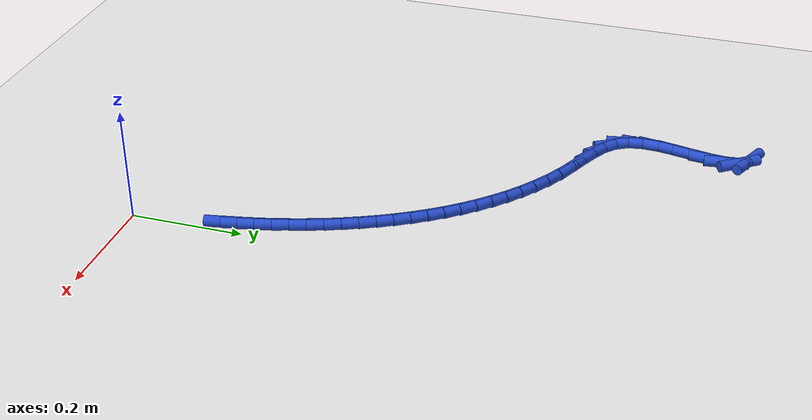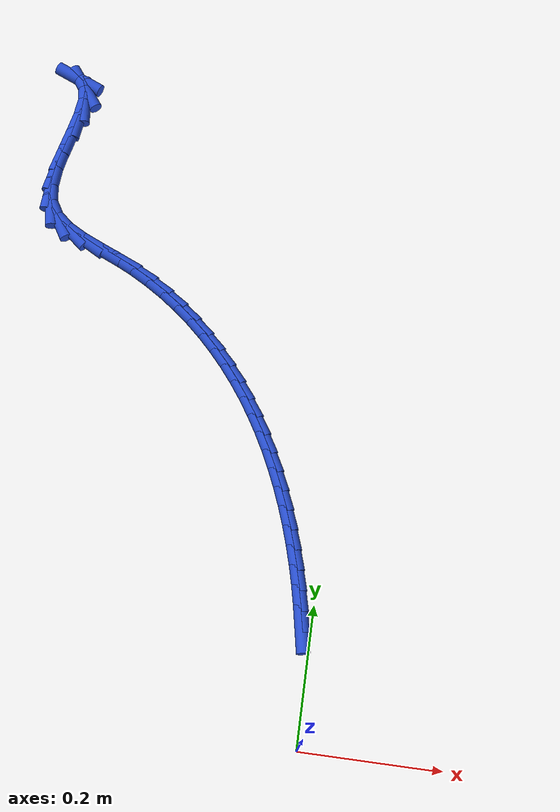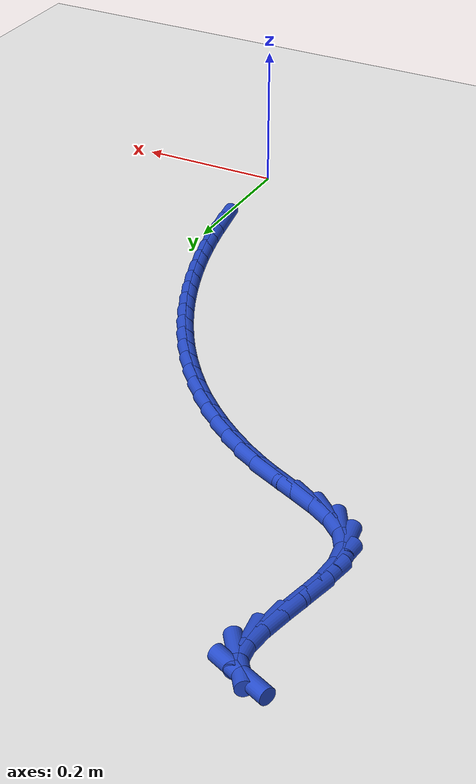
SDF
<sdf version="1.6">
 <world name="default">
  <model name="ground_plane">
   <static>1</static>
   <link name="link">
    <collision name="collision">
     <geometry><plane><normal>0 0 1</normal><size>100 100</size></plane></geometry>
     <surface><friction><ode><mu>100</mu><mu2>50</mu2></ode></friction></surface>
    </collision>
    <visual name="visual">
     <cast_shadows>0</cast_shadows>
     <geometry><plane><normal>0 0 1</normal><size>100 100</size></plane></geometry>
     <material>
      <script><uri>file://media/materials/scripts/gazebo.material</uri><name>Gazebo/WhiteGlow</name></script>
     </material>
    </visual>
   </link>
  </model>
  <model name="line">
   <link name="link_6">
    <pose>-0.014490750442573185 0.16972795951124003 0.01 0 1.57 -1.3855432155248486</pose>
    <collision name="collision">
     <geometry><cylinder><radius>0.01</radius><length>0.08</length></cylinder></geometry>
    </collision>
    <visual name="visual">
     <material>
      <script><name>Gazebo/Blue</name><uri>file://media/materials/scripts/gazebo.material</uri></script>
     </material>
     <geometry><cylinder><radius>0.01</radius><length>0.08</length></cylinder></geometry>
    </visual>
   </link>
   <link name="link_7">
    <pose>-0.01976101061200003 0.1978507382583084 0.01 0 1.57 -1.3569011477634403</pose>
    <collision name="collision">
     <geometry><cylinder><radius>0.01</radius><length>0.08</length></cylinder></geometry>
    </collision>
    <visual name="visual">
     <material>
      <script><name>Gazebo/Blue</name><uri>file://media/materials/scripts/gazebo.material</uri></script>
     </material>
     <geometry><cylinder><radius>0.01</radius><length>0.08</length></cylinder></geometry>
    </visual>
   </link>
   <link name="link_8">
    <pose>-0.02586236894716214 0.22593938087195514 0.01 0 1.57 -1.3278406887096128</pose>
    <collision name="collision">
     <geometry><cylinder><radius>0.01</radius><length>0.08</length></cylinder></geometry>
    </collision>
    <visual name="visual">
     <material>
      <script><name>Gazebo/Blue</name><uri>file://media/materials/scripts/gazebo.material</uri></script>
     </material>
     <geometry><cylinder><radius>0.01</radius><length>0.08</length></cylinder></geometry>
    </visual>
   </link>
   <link name="link_9">
    <pose>-0.03280944592740431 0.2539685581422681 0.01 0 1.57 -1.2975976570735104</pose>
    <collision name="collision">
     <geometry><cylinder><radius>0.01</radius><length>0.08</length></cylinder></geometry>
    </collision>
    <visual name="visual">
     <material>
      <script><name>Gazebo/Blue</name><uri>file://media/materials/scripts/gazebo.material</uri></script>
     </material>
     <geometry><cylinder><radius>0.01</radius><length>0.08</length></cylinder></geometry>
    </visual>
   </link>
   <link name="link_10">
    <pose>-0.04062848938661211 0.28187329596348015 0.01 0 1.57 -1.2660096918511405</pose>
    <collision name="collision">
     <geometry><cylinder><radius>0.01</radius><length>0.08</length></cylinder></geometry>
    </collision>
    <visual name="visual">
     <material>
      <script><name>Gazebo/Blue</name><uri>file://media/materials/scripts/gazebo.material</uri></script>
     </material>
     <geometry><cylinder><radius>0.01</radius><length>0.08</length></cylinder></geometry>
    </visual>
   </link>
   <link name="link_11">
    <pose>-0.049346553325772154 0.3095858715039086 0.01 0 1.57 -1.2329635797595693</pose>
    <collision name="collision">
     <geometry><cylinder><radius>0.01</radius><length>0.08</length></cylinder></geometry>
    </collision>
    <visual name="visual">
     <material>
      <script><name>Gazebo/Blue</name><uri>file://media/materials/scripts/gazebo.material</uri></script>
     </material>
     <geometry><cylinder><radius>0.01</radius><length>0.08</length></cylinder></geometry>
    </visual>
   </link>
   <link name="link_12">
    <pose>-0.058990691745871036 0.3370385619318703 0.01 0 1.57 -1.1983488932502169</pose>
    <collision name="collision">
     <geometry><cylinder><radius>0.01</radius><length>0.08</length></cylinder></geometry>
    </collision>
    <visual name="visual">
     <material>
      <script><name>Gazebo/Blue</name><uri>file://media/materials/scripts/gazebo.material</uri></script>
     </material>
     <geometry><cylinder><radius>0.01</radius><length>0.08</length></cylinder></geometry>
    </visual>
   </link>
   <link name="link_13">
    <pose>-0.06958795864789534 0.36416364441568255 0.01 0 1.57 -1.1620599497109119</pose>
    <collision name="collision">
     <geometry><cylinder><radius>0.01</radius><length>0.08</length></cylinder></geometry>
    </collision>
    <visual name="visual">
     <material>
      <script><name>Gazebo/Blue</name><uri>file://media/materials/scripts/gazebo.material</uri></script>
     </material>
     <geometry><cylinder><radius>0.01</radius><length>0.08</length></cylinder></geometry>
    </visual>
   </link>
   <link name="link_14">
    <pose>-0.08116540803283172 0.39089339612366225 0.01 0 1.57 -1.1239984541088368</pose>
    <collision name="collision">
     <geometry><cylinder><radius>0.01</radius><length>0.08</length></cylinder></geometry>
    </collision>
    <visual name="visual">
     <material>
      <script><name>Gazebo/Blue</name><uri>file://media/materials/scripts/gazebo.material</uri></script>
     </material>
     <geometry><cylinder><radius>0.01</radius><length>0.08</length></cylinder></geometry>
    </visual>
   </link>
   <link name="link_15">
    <pose>-0.09375009390166672 0.41716009422412653 0.01 0 1.57 -1.0840768847911435</pose>
    <collision name="collision">
     <geometry><cylinder><radius>0.01</radius><length>0.08</length></cylinder></geometry>
    </collision>
    <visual name="visual">
     <material>
      <script><name>Gazebo/Blue</name><uri>file://media/materials/scripts/gazebo.material</uri></script>
     </material>
     <geometry><cylinder><radius>0.01</radius><length>0.08</length></cylinder></geometry>
    </visual>
   </link>
   <link name="link_16">
    <pose>-0.10736907025538697 0.44289601588539246 0.01 0 1.57 -1.0422226506803636</pose>
    <collision name="collision">
     <geometry><cylinder><radius>0.01</radius><length>0.08</length></cylinder></geometry>
    </collision>
    <visual name="visual">
     <material>
      <script><name>Gazebo/Blue</name><uri>file://media/materials/scripts/gazebo.material</uri></script>
     </material>
     <geometry><cylinder><radius>0.01</radius><length>0.08</length></cylinder></geometry>
    </visual>
   </link>
   <link name="link_17">
    <pose>-0.12204939109497907 0.46803343827577715 0.01 0 1.57 -0.9983829927983333</pose>
    <collision name="collision">
     <geometry><cylinder><radius>0.01</radius><length>0.08</length></cylinder></geometry>
    </collision>
    <visual name="visual">
     <material>
      <script><name>Gazebo/Blue</name><uri>file://media/materials/scripts/gazebo.material</uri></script>
     </material>
     <geometry><cylinder><radius>0.01</radius><length>0.08</length></cylinder></geometry>
    </visual>
   </link>
   <link name="link_18">
    <pose>-0.13781811042142963 0.4925046385635976 0.01 0 1.57 -0.9525305192763821</pose>
    <collision name="collision">
     <geometry><cylinder><radius>0.01</radius><length>0.08</length></cylinder></geometry>
    </collision>
    <visual name="visual">
     <material>
      <script><name>Gazebo/Blue</name><uri>file://media/materials/scripts/gazebo.material</uri></script>
     </material>
     <geometry><cylinder><radius>0.01</radius><length>0.08</length></cylinder></geometry>
    </visual>
   </link>
   <link name="link_19">
    <pose>-0.15470228223572524 0.5162418939171709 0.01 0 1.57 -0.9046691493081778</pose>
    <collision name="collision">
     <geometry><cylinder><radius>0.01</radius><length>0.08</length></cylinder></geometry>
    </collision>
    <visual name="visual">
     <material>
      <script><name>Gazebo/Blue</name><uri>file://media/materials/scripts/gazebo.material</uri></script>
     </material>
     <geometry><cylinder><radius>0.01</radius><length>0.08</length></cylinder></geometry>
    </visual>
   </link>
   <link name="link_20">
    <pose>-0.17272896053885256 0.5391774815048141 0.01 0 1.57 -0.8548401026462458</pose>
    <collision name="collision">
     <geometry><cylinder><radius>0.01</radius><length>0.08</length></cylinder></geometry>
    </collision>
    <visual name="visual">
     <material>
      <script><name>Gazebo/Blue</name><uri>file://media/materials/scripts/gazebo.material</uri></script>
     </material>
     <geometry><cylinder><radius>0.01</radius><length>0.08</length></cylinder></geometry>
    </visual>
   </link>
   <link name="link_21">
    <pose>-0.19192519933179808 0.5612436784948442 0.01 0 1.57 -0.8031274215292697</pose>
    <collision name="collision">
     <geometry><cylinder><radius>0.01</radius><length>0.08</length></cylinder></geometry>
    </collision>
    <visual name="visual">
     <material>
      <script><name>Gazebo/Blue</name><uri>file://media/materials/scripts/gazebo.material</uri></script>
     </material>
     <geometry><cylinder><radius>0.01</radius><length>0.08</length></cylinder></geometry>
    </visual>
   </link>
   <link name="link_22">
    <pose>-0.21231805261554848 0.5823727620555786 0.01 0 1.57 -0.7496623774940291</pose>
    <collision name="collision">
     <geometry><cylinder><radius>0.01</radius><length>0.08</length></cylinder></geometry>
    </collision>
    <visual name="visual">
     <material>
      <script><name>Gazebo/Blue</name><uri>file://media/materials/scripts/gazebo.material</uri></script>
     </material>
     <geometry><cylinder><radius>0.01</radius><length>0.08</length></cylinder></geometry>
    </visual>
   </link>
   <link name="link_23">
    <pose>-0.23393457439109025 0.6024970093553339 0.01 0 1.57 -0.6946260337252137</pose>
    <collision name="collision">
     <geometry><cylinder><radius>0.01</radius><length>0.08</length></cylinder></geometry>
    </collision>
    <visual name="visual">
     <material>
      <script><name>Gazebo/Blue</name><uri>file://media/materials/scripts/gazebo.material</uri></script>
     </material>
     <geometry><cylinder><radius>0.01</radius><length>0.08</length></cylinder></geometry>
    </visual>
   </link>
   <link name="link_24">
    <pose>-0.25680181865941026 0.6215486975624275 0.01 0 1.57 -0.6382492472792084</pose>
    <collision name="collision">
     <geometry><cylinder><radius>0.01</radius><length>0.08</length></cylinder></geometry>
    </collision>
    <visual name="visual">
     <material>
      <script><name>Gazebo/Blue</name><uri>file://media/materials/scripts/gazebo.material</uri></script>
     </material>
     <geometry><cylinder><radius>0.01</radius><length>0.08</length></cylinder></geometry>
    </visual>
   </link>
   <link name="link_25">
    <pose>-0.2809468394214949 0.6394601038451766 0.01 0 1.57 -0.5808095412042004</pose>
    <collision name="collision">
     <geometry><cylinder><radius>0.01</radius><length>0.08</length></cylinder></geometry>
    </collision>
    <visual name="visual">
     <material>
      <script><name>Gazebo/Blue</name><uri>file://media/materials/scripts/gazebo.material</uri></script>
     </material>
     <geometry><cylinder><radius>0.01</radius><length>0.08</length></cylinder></geometry>
    </visual>
   </link>
   <link name="link_26">
    <pose>-0.3063966906783307 0.6561635053718976 0.01 0 1.57 -0.522624568244136</pose>
    <collision name="collision">
     <geometry><cylinder><radius>0.01</radius><length>0.08</length></cylinder></geometry>
    </collision>
    <visual name="visual">
     <material>
      <script><name>Gazebo/Blue</name><uri>file://media/materials/scripts/gazebo.material</uri></script>
     </material>
     <geometry><cylinder><radius>0.01</radius><length>0.08</length></cylinder></geometry>
    </visual>
   </link>
   <link name="link_27">
    <pose>-0.3331784264309044 0.6715911793109082 0.01 0 1.57 -0.46404230185552214</pose>
    <collision name="collision">
     <geometry><cylinder><radius>0.01</radius><length>0.08</length></cylinder></geometry>
    </collision>
    <visual name="visual">
     <material>
      <script><name>Gazebo/Blue</name><uri>file://media/materials/scripts/gazebo.material</uri></script>
     </material>
     <geometry><cylinder><radius>0.01</radius><length>0.08</length></cylinder></geometry>
    </visual>
   </link>
   <link name="link_28">
    <pose>-0.3613191006802027 0.6856754028305252 0.01 0 1.57 -0.41724257743790666</pose>
    <collision name="collision">
     <geometry><cylinder><radius>0.01</radius><length>0.08</length></cylinder></geometry>
    </collision>
    <visual name="visual">
     <material>
      <script><name>Gazebo/Blue</name><uri>file://media/materials/scripts/gazebo.material</uri></script>
     </material>
     <geometry><cylinder><radius>0.01</radius><length>0.08</length></cylinder></geometry>
    </visual>
   </link>
   <link name="link_29">
    <pose>-0.3904823503910066 0.6986025754839386 0.01 0 1.57 -0.42921007259932664</pose>
    <collision name="collision">
     <geometry><cylinder><radius>0.01</radius><length>0.08</length></cylinder></geometry>
    </collision>
    <visual name="visual">
     <material>
      <script><name>Gazebo/Blue</name><uri>file://media/materials/scripts/gazebo.material</uri></script>
     </material>
     <geometry><cylinder><radius>0.01</radius><length>0.08</length></cylinder></geometry>
    </visual>
   </link>
   <link name="link_30">
    <pose>-0.41885847279085736 0.7115893418884229 0.01 0 1.57 -0.5193345825374572</pose>
    <collision name="collision">
     <geometry><cylinder><radius>0.01</radius><length>0.08</length></cylinder></geometry>
    </collision>
    <visual name="visual">
     <material>
      <script><name>Gazebo/Blue</name><uri>file://media/materials/scripts/gazebo.material</uri></script>
     </material>
     <geometry><cylinder><radius>0.01</radius><length>0.08</length></cylinder></geometry>
    </visual>
   </link>
   <link name="link_31">
    <pose>-0.44426444590678676 0.7261133932168655 0.01 0 1.57 -0.7137127139691173</pose>
    <collision name="collision">
     <geometry><cylinder><radius>0.01</radius><length>0.08</length></cylinder></geometry>
    </collision>
    <visual name="visual">
     <material>
      <script><name>Gazebo/Blue</name><uri>file://media/materials/scripts/gazebo.material</uri></script>
     </material>
     <geometry><cylinder><radius>0.01</radius><length>0.08</length></cylinder></geometry>
    </visual>
   </link>
   <link name="link_32">
    <pose>-0.4645172477326955 0.7436524206653207 0.01 0 1.57 -1.0403992607029242</pose>
    <collision name="collision">
     <geometry><cylinder><radius>0.01</radius><length>0.08</length></cylinder></geometry>
    </collision>
    <visual name="visual">
     <material>
      <script><name>Gazebo/Blue</name><uri>file://media/materials/scripts/gazebo.material</uri></script>
     </material>
     <geometry><cylinder><radius>0.01</radius><length>0.08</length></cylinder></geometry>
    </visual>
   </link>
   <link name="link_33">
    <pose>-0.4774366080567777 0.7656821742264766 0.01 0 1.57 -1.4039612263122339</pose>
    <collision name="collision">
     <geometry><cylinder><radius>0.01</radius><length>0.08</length></cylinder></geometry>
    </collision>
    <visual name="visual">
     <material>
      <script><name>Gazebo/Blue</name><uri>file://media/materials/scripts/gazebo.material</uri></script>
     </material>
     <geometry><cylinder><radius>0.01</radius><length>0.08</length></cylinder></geometry>
    </visual>
   </link>
   <link name="link_34">
    <pose>-0.48201220138556805 0.7928530876144257 0.01 0 1.57 1.5126866364312026</pose>
    <collision name="collision">
     <geometry><cylinder><radius>0.01</radius><length>0.08</length></cylinder></geometry>
    </collision>
    <visual name="visual">
     <material>
      <script><name>Gazebo/Blue</name><uri>file://media/materials/scripts/gazebo.material</uri></script>
     </material>
     <geometry><cylinder><radius>0.01</radius><length>0.08</length></cylinder></geometry>
    </visual>
   </link>
   <link name="link_35">
    <pose>-0.48021703323472115 0.8237110578009157 0.01 0 1.57 1.3978102307360205</pose>
    <collision name="collision">
     <geometry><cylinder><radius>0.01</radius><length>0.08</length></cylinder></geometry>
    </collision>
    <visual name="visual">
     <material>
      <script><name>Gazebo/Blue</name><uri>file://media/materials/scripts/gazebo.material</uri></script>
     </material>
     <geometry><cylinder><radius>0.01</radius><length>0.08</length></cylinder></geometry>
    </visual>
   </link>
   <link name="link_36">
    <pose>-0.47449273764229405 0.8564713962675495 0.01 0 1.57 1.3548662235397153</pose>
    <collision name="collision">
     <geometry><cylinder><radius>0.01</radius><length>0.08</length></cylinder></geometry>
    </collision>
    <visual name="visual">
     <material>
      <script><name>Gazebo/Blue</name><uri>file://media/materials/scripts/gazebo.material</uri></script>
     </material>
     <geometry><cylinder><radius>0.01</radius><length>0.08</length></cylinder></geometry>
    </visual>
   </link>
   <link name="link_37">
    <pose>-0.4672809486463442 0.8893494144959311 0.01 0 1.57 1.3729249426160999</pose>
    <collision name="collision">
     <geometry><cylinder><radius>0.01</radius><length>0.08</length></cylinder></geometry>
    </collision>
    <visual name="visual">
     <material>
      <script><name>Gazebo/Blue</name><uri>file://media/materials/scripts/gazebo.material</uri></script>
     </material>
     <geometry><cylinder><radius>0.01</radius><length>0.08</length></cylinder></geometry>
    </visual>
   </link>
   <link name="link_38">
    <pose>-0.46102330028492894 0.920560423967663 0.01 0 1.57 1.4680632895905692</pose>
    <collision name="collision">
     <geometry><cylinder><radius>0.01</radius><length>0.08</length></cylinder></geometry>
    </collision>
    <visual name="visual">
     <material>
      <script><name>Gazebo/Blue</name><uri>file://media/materials/scripts/gazebo.material</uri></script>
     </material>
     <geometry><cylinder><radius>0.01</radius><length>0.08</length></cylinder></geometry>
    </visual>
   </link>
   <link name="link_39">
    <pose>-0.45816142659610537 0.9483197361643496 0.01 0 1.57 -1.4394455895109424</pose>
    <collision name="collision">
     <geometry><cylinder><radius>0.01</radius><length>0.08</length></cylinder></geometry>
    </collision>
    <visual name="visual">
     <material>
      <script><name>Gazebo/Blue</name><uri>file://media/materials/scripts/gazebo.material</uri></script>
     </material>
     <geometry><cylinder><radius>0.01</radius><length>0.08</length></cylinder></geometry>
    </visual>
   </link>
   <link name="link_40">
    <pose>-0.4611369616179312 0.9708426625675943 0.01 0 1.57 -0.9482673424361193</pose>
    <collision name="collision">
     <geometry><cylinder><radius>0.01</radius><length>0.08</length></cylinder></geometry>
    </collision>
    <visual name="visual">
     <material>
      <script><name>Gazebo/Blue</name><uri>file://media/materials/scripts/gazebo.material</uri></script>
     </material>
     <geometry><cylinder><radius>0.01</radius><length>0.08</length></cylinder></geometry>
    </visual>
   </link>
   <link name="link_41">
    <pose>-0.472312769322741 0.9864136264071249 0.01 0 1.57 -0.41811912800754447</pose>
    <collision name="collision">
     <geometry><cylinder><radius>0.01</radius><length>0.08</length></cylinder></geometry>
    </collision>
    <visual name="visual">
     <material>
      <script><name>Gazebo/Blue</name><uri>file://media/materials/scripts/gazebo.material</uri></script>
     </material>
     <geometry><cylinder><radius>0.01</radius><length>0.08</length></cylinder></geometry>
    </visual>
   </link>
  </model>
 </world>
</sdf>
